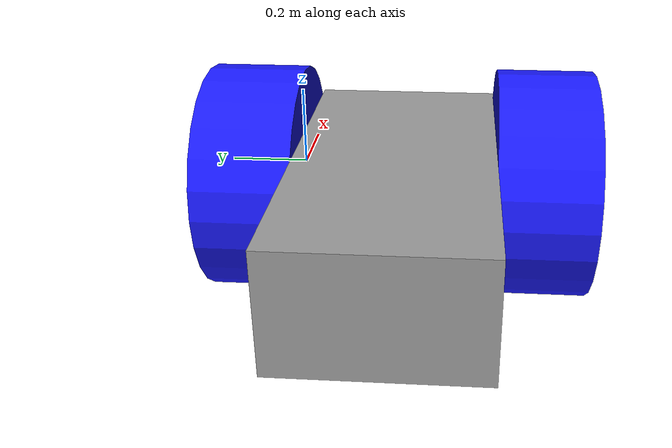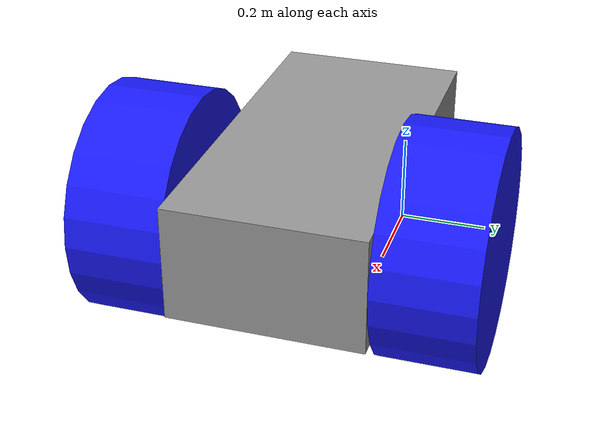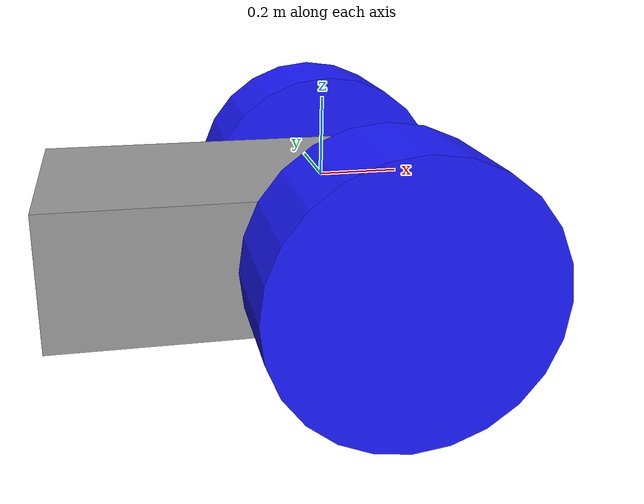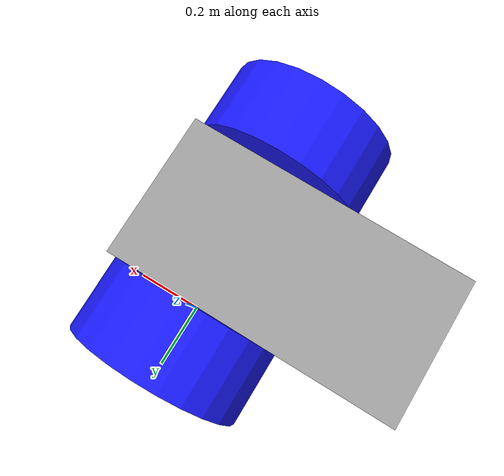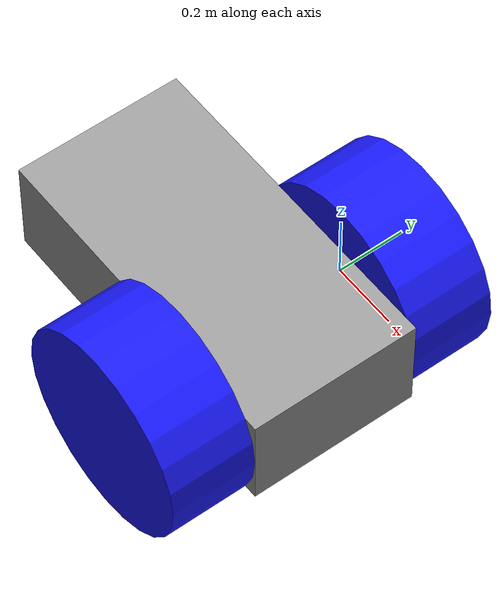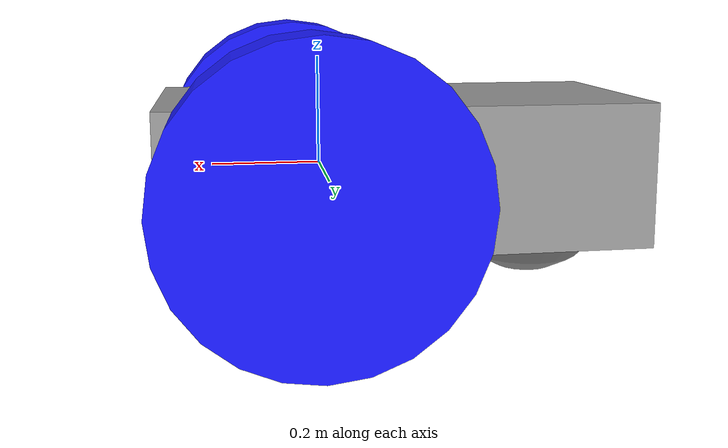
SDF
<?xml version='1.0'?>
<sdf version='1.7'>
  <model name='sample'>
    <link name='chasis'>
      <inertial>
        <mass>6</mass>
        <inertia>
          <ixx>1</ixx>
          <ixy>0</ixy>
          <ixz>0</ixz>
          <iyy>1</iyy>
          <iyz>0</iyz>
          <izz>1</izz>
        </inertia>
        <pose>0 0 0 0 -0 0</pose>
      </inertial>
      <pose>-0.188987 -0.255254 -0.05 0 -0 0</pose>
      <gravity>1</gravity>
      <self_collide>0</self_collide>
      <kinematic>0</kinematic>
      <enable_wind>0</enable_wind>
      <visual name='visual'>
        <pose>0 0 0 0 -0 0</pose>
        <geometry>
          <box>
            <size>1 0.5 0.3</size>
          </box>
        </geometry>
        <material>
          <lighting>1</lighting>
          <script>
            <uri>file://media/materials/scripts/gazebo.material</uri>
            <name>Gazebo/Grey</name>
          </script>
          <shader type='pixel'>
            <normal_map>__default__</normal_map>
          </shader>
          <ambient>0.3 0.3 0.3 1</ambient>
          <diffuse>0.7 0.7 0.7 1</diffuse>
          <specular>0.01 0.01 0.01 1</specular>
          <emissive>0 0 0 1</emissive>
        </material>
        <transparency>0</transparency>
        <cast_shadows>1</cast_shadows>
      </visual>
      <collision name='collision'>
        <laser_retro>0</laser_retro>
        <max_contacts>10</max_contacts>
        <pose>0 0 0 0 -0 0</pose>
        <geometry>
          <box>
            <size>1 0.5 0.3</size>
          </box>
        </geometry>
        <surface>
          <friction>
            <ode>
              <mu>1</mu>
              <mu2>1</mu2>
              <fdir1>0 0 0</fdir1>
              <slip1>0</slip1>
              <slip2>0</slip2>
            </ode>
            <torsional>
              <coefficient>1</coefficient>
              <patch_radius>0</patch_radius>
              <surface_radius>0</surface_radius>
              <use_patch_radius>1</use_patch_radius>
              <ode>
                <slip>0</slip>
              </ode>
            </torsional>
          </friction>
          <bounce>
            <restitution_coefficient>0</restitution_coefficient>
            <threshold>1e+06</threshold>
          </bounce>
          <contact>
            <collide_without_contact>0</collide_without_contact>
            <collide_without_contact_bitmask>1</collide_without_contact_bitmask>
            <collide_bitmask>1</collide_bitmask>
            <ode>
              <soft_cfm>0</soft_cfm>
              <soft_erp>0.2</soft_erp>
              <kp>1e+13</kp>
              <kd>1</kd>
              <max_vel>0.01</max_vel>
              <min_depth>0</min_depth>
            </ode>
            <bullet>
              <split_impulse>1</split_impulse>
              <split_impulse_penetration_threshold>-0.01</split_impulse_penetration_threshold>
              <soft_cfm>0</soft_cfm>
              <soft_erp>0.2</soft_erp>
              <kp>1e+13</kp>
              <kd>1</kd>
            </bullet>
          </contact>
        </surface>
      </collision>
    </link>
    <link name='left_wheel'>
      <inertial>
        <mass>1</mass>
        <inertia>
          <ixx>0.145833</ixx>
          <ixy>0</ixy>
          <ixz>0</ixz>
          <iyy>0.145833</iyy>
          <iyz>0</iyz>
          <izz>0.125</izz>
        </inertia>
        <pose>0 0 0 0 -0 0</pose>
      </inertial>
      <pose>0.011013 0.119775 -0.05 0 -0 0</pose>
      <gravity>1</gravity>
      <self_collide>0</self_collide>
      <kinematic>0</kinematic>
      <enable_wind>0</enable_wind>
      <visual name='visual'>
        <pose>0 0 0 1.5707 -0 0</pose>
        <geometry>
          <cylinder>
            <radius>0.3</radius>
            <length>0.25</length>
          </cylinder>
        </geometry>
        <material>
          <lighting>1</lighting>
          <script>
            <uri>file://media/materials/scripts/gazebo.material</uri>
            <name>Gazebo/Grey</name>
          </script>
          <shader type='pixel'>
            <normal_map>__default__</normal_map>
          </shader>
          <ambient>0.1 0.1 1 1</ambient>
          <diffuse>0.1 0.1 1 1</diffuse>
          <specular>0.01 0.01 0.01 1</specular>
          <emissive>0 0 0 1</emissive>
        </material>
        <transparency>0</transparency>
        <cast_shadows>1</cast_shadows>
      </visual>
      <collision name='collision'>
        <laser_retro>0</laser_retro>
        <max_contacts>10</max_contacts>
        <pose>0 0 0 1.5707 -0 0</pose>
        <geometry>
          <cylinder>
            <radius>0.3</radius>
            <length>0.25</length>
          </cylinder>
        </geometry>
        <surface>
          <friction>
            <ode>
              <mu>1</mu>
              <mu2>1</mu2>
              <fdir1>0 0 0</fdir1>
              <slip1>0</slip1>
              <slip2>0</slip2>
            </ode>
            <torsional>
              <coefficient>1</coefficient>
              <patch_radius>0</patch_radius>
              <surface_radius>0</surface_radius>
              <use_patch_radius>1</use_patch_radius>
              <ode>
                <slip>0</slip>
              </ode>
            </torsional>
          </friction>
          <bounce>
            <restitution_coefficient>0</restitution_coefficient>
            <threshold>1e+06</threshold>
          </bounce>
          <contact>
            <collide_without_contact>0</collide_without_contact>
            <collide_without_contact_bitmask>1</collide_without_contact_bitmask>
            <collide_bitmask>1</collide_bitmask>
            <ode>
              <soft_cfm>0</soft_cfm>
              <soft_erp>0.2</soft_erp>
              <kp>1e+13</kp>
              <kd>1</kd>
              <max_vel>0.01</max_vel>
              <min_depth>0</min_depth>
            </ode>
            <bullet>
              <split_impulse>1</split_impulse>
              <split_impulse_penetration_threshold>-0.01</split_impulse_penetration_threshold>
              <soft_cfm>0</soft_cfm>
              <soft_erp>0.2</soft_erp>
              <kp>1e+13</kp>
              <kd>1</kd>
            </bullet>
          </contact>
        </surface>
      </collision>
    </link>
    <link name='right_wheel'>
      <inertial>
        <mass>1</mass>
        <inertia>
          <ixx>0.145833</ixx>
          <ixy>0</ixy>
          <ixz>0</ixz>
          <iyy>0.145833</iyy>
          <iyz>0</iyz>
          <izz>0.125</izz>
        </inertia>
        <pose>0 0 0 0 -0 0</pose>
      </inertial>
      <pose>0.011013 -0.630283 -0.05 0 -0 0</pose>
      <gravity>1</gravity>
      <self_collide>0</self_collide>
      <kinematic>0</kinematic>
      <enable_wind>0</enable_wind>
      <visual name='visual'>
        <pose>0 0 0 1.5707 -0 0</pose>
        <geometry>
          <cylinder>
            <radius>0.3</radius>
            <length>0.25</length>
          </cylinder>
        </geometry>
        <material>
          <lighting>1</lighting>
          <script>
            <uri>file://media/materials/scripts/gazebo.material</uri>
            <name>Gazebo/Grey</name>
          </script>
          <shader type='pixel'>
            <normal_map>__default__</normal_map>
          </shader>
          <ambient>0.1 0.1 1 1</ambient>
          <diffuse>0.1 0.1 1 1</diffuse>
          <specular>0.01 0.01 0.01 1</specular>
          <emissive>0 0 0 1</emissive>
        </material>
        <transparency>0</transparency>
        <cast_shadows>1</cast_shadows>
      </visual>
      <collision name='collision'>
        <laser_retro>0</laser_retro>
        <max_contacts>10</max_contacts>
        <pose>0 0 0 1.5707 -0 0</pose>
        <geometry>
          <cylinder>
            <radius>0.3</radius>
            <length>0.25</length>
          </cylinder>
        </geometry>
        <surface>
          <friction>
            <ode>
              <mu>1</mu>
              <mu2>1</mu2>
              <fdir1>0 0 0</fdir1>
              <slip1>0</slip1>
              <slip2>0</slip2>
            </ode>
            <torsional>
              <coefficient>1</coefficient>
              <patch_radius>0</patch_radius>
              <surface_radius>0</surface_radius>
              <use_patch_radius>1</use_patch_radius>
              <ode>
                <slip>0</slip>
              </ode>
            </torsional>
          </friction>
          <bounce>
            <restitution_coefficient>0</restitution_coefficient>
            <threshold>1e+06</threshold>
          </bounce>
          <contact>
            <collide_without_contact>0</collide_without_contact>
            <collide_without_contact_bitmask>1</collide_without_contact_bitmask>
            <collide_bitmask>1</collide_bitmask>
            <ode>
              <soft_cfm>0</soft_cfm>
              <soft_erp>0.2</soft_erp>
              <kp>1e+13</kp>
              <kd>1</kd>
              <max_vel>0.01</max_vel>
              <min_depth>0</min_depth>
            </ode>
            <bullet>
              <split_impulse>1</split_impulse>
              <split_impulse_penetration_threshold>-0.01</split_impulse_penetration_threshold>
              <soft_cfm>0</soft_cfm>
              <soft_erp>0.2</soft_erp>
              <kp>1e+13</kp>
              <kd>1</kd>
            </bullet>
          </contact>
        </surface>
      </collision>
    </link>
    <link name='balls'>
      <inertial>
        <mass>1</mass>
        <inertia>
          <ixx>0.1</ixx>
          <ixy>0</ixy>
          <ixz>0</ixz>
          <iyy>0.1</iyy>
          <iyz>0</iyz>
          <izz>0.1</izz>
        </inertia>
        <pose>-0.3 0 0.2 0 -0 0</pose>
      </inertial>
      <pose>-0.488987 -0.255254 -0.1 0 -0 0</pose>
      <gravity>1</gravity>
      <self_collide>0</self_collide>
      <kinematic>0</kinematic>
      <enable_wind>0</enable_wind>
      <visual name='visual'>
        <pose>0 0 0 0 -0 0</pose>
        <geometry>
          <sphere>
            <radius>0.2</radius>
          </sphere>
        </geometry>
        <material>
          <lighting>1</lighting>
          <script>
            <uri>file://media/materials/scripts/gazebo.material</uri>
            <name>Gazebo/Grey</name>
          </script>
          <shader type='pixel'>
            <normal_map>__default__</normal_map>
          </shader>
          <ambient>0.4 0.4 0.4 1</ambient>
          <diffuse>0.4 0.4 0.4 1</diffuse>
          <specular>0.01 0.01 0.01 1</specular>
          <emissive>0 0 0 1</emissive>
        </material>
        <transparency>0</transparency>
        <cast_shadows>1</cast_shadows>
      </visual>
      <collision name='collision'>
        <laser_retro>0</laser_retro>
        <max_contacts>10</max_contacts>
        <pose>0 0 0 0 -0 0</pose>
        <geometry>
          <sphere>
            <radius>0.2</radius>
          </sphere>
        </geometry>
        <surface>
          <friction>
            <ode>
              <mu>1</mu>
              <mu2>1</mu2>
              <fdir1>0 0 0</fdir1>
              <slip1>0</slip1>
              <slip2>0</slip2>
            </ode>
            <torsional>
              <coefficient>1</coefficient>
              <patch_radius>0</patch_radius>
              <surface_radius>0</surface_radius>
              <use_patch_radius>1</use_patch_radius>
              <ode>
                <slip>0</slip>
              </ode>
            </torsional>
          </friction>
          <bounce>
            <restitution_coefficient>0</restitution_coefficient>
            <threshold>1e+06</threshold>
          </bounce>
          <contact>
            <collide_without_contact>0</collide_without_contact>
            <collide_without_contact_bitmask>1</collide_without_contact_bitmask>
            <collide_bitmask>1</collide_bitmask>
            <ode>
              <soft_cfm>0</soft_cfm>
              <soft_erp>0.2</soft_erp>
              <kp>1e+13</kp>
              <kd>1</kd>
              <max_vel>0.01</max_vel>
              <min_depth>0</min_depth>
            </ode>
            <bullet>
              <split_impulse>1</split_impulse>
              <split_impulse_penetration_threshold>-0.01</split_impulse_penetration_threshold>
              <soft_cfm>0</soft_cfm>
              <soft_erp>0.2</soft_erp>
              <kp>1e+13</kp>
              <kd>1</kd>
            </bullet>
          </contact>
        </surface>
      </collision>
    </link>
    <joint name='link_chasis_left_wheel' type='revolute'>
      <parent>chasis</parent>
      <child>left_wheel</child>
      <pose>0 0 0 0 -0 0</pose>
      <axis>
        <xyz>0 1 0</xyz>
        <limit>
          <lower>-1.79769e+308</lower>
          <upper>1.79769e+308</upper>
          <effort>-1</effort>
          <velocity>-1</velocity>
        </limit>
        <dynamics>
          <spring_reference>0</spring_reference>
          <spring_stiffness>0</spring_stiffness>
          <damping>0</damping>
          <friction>0</friction>
        </dynamics>
      </axis>
      <physics>
        <ode>
          <limit>
            <cfm>0</cfm>
            <erp>0.2</erp>
          </limit>
          <suspension>
            <cfm>0</cfm>
            <erp>0.2</erp>
          </suspension>
        </ode>
      </physics>
    </joint>
    <joint name='link_chasis_right_wheel' type='revolute'>
      <parent>chasis</parent>
      <child>right_wheel</child>
      <pose>0 0 0 0 -0 0</pose>
      <axis>
        <xyz>0 1 0</xyz>
        <limit>
          <lower>-1.79769e+308</lower>
          <upper>1.79769e+308</upper>
          <effort>-1</effort>
          <velocity>-1</velocity>
        </limit>
        <dynamics>
          <spring_reference>0</spring_reference>
          <spring_stiffness>0</spring_stiffness>
          <damping>0</damping>
          <friction>0</friction>
        </dynamics>
      </axis>
      <physics>
        <ode>
          <limit>
            <cfm>0</cfm>
            <erp>0.2</erp>
          </limit>
          <suspension>
            <cfm>0</cfm>
            <erp>0.2</erp>
          </suspension>
        </ode>
      </physics>
    </joint>
    <joint name='link_chasis_ball' type='ball'>
      <parent>chasis</parent>
      <child>balls</child>
      <pose>0 0 0 0 -0 0</pose>
      <physics>
        <ode>
          <limit>
            <cfm>0</cfm>
            <erp>0.2</erp>
          </limit>
          <suspension>
            <cfm>0</cfm>
            <erp>0.2</erp>
          </suspension>
        </ode>
      </physics>
    </joint>
    <static>0</static>
    <allow_auto_disable>1</allow_auto_disable>
    <plugin name="simple_rover_diff_drive" filename="libgazebo_ros_diff_drive.so">
        <update_rate>30</update_rate>
        <!-- wheels -->
        <left_joint>link_chasis_left_wheel</left_joint>
        <right_joint>link_chasis_right_wheel</right_joint>
        <!-- kinematics -->
        <wheel_separation>0.52</wheel_separation>
        <wheel_diameter>0.28</wheel_diameter>
        <!-- limits -->
        <max_wheel_torque>20</max_wheel_torque>
        <max_wheel_acceleration>1.0</max_wheel_acceleration>
        <!-- Receive velocity commands on this ROS topic -->
        <command_topic>cmd_vel</command_topic>
    </plugin>
  </model>
</sdf>
